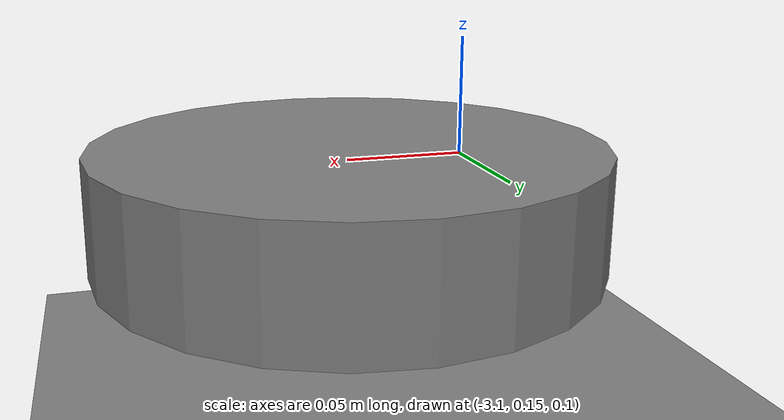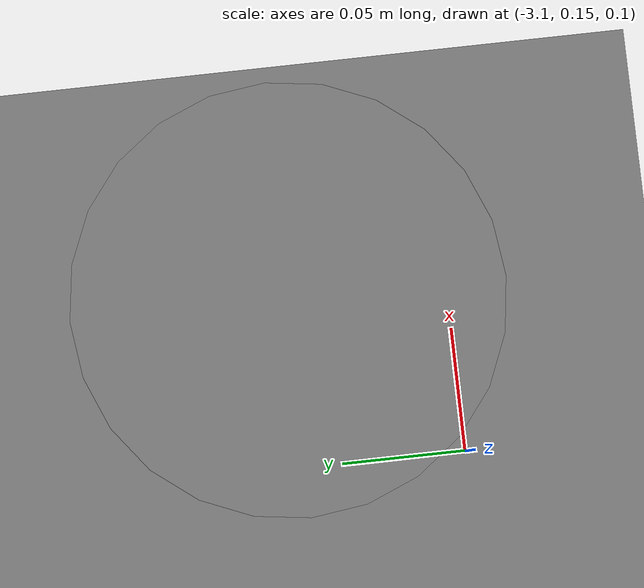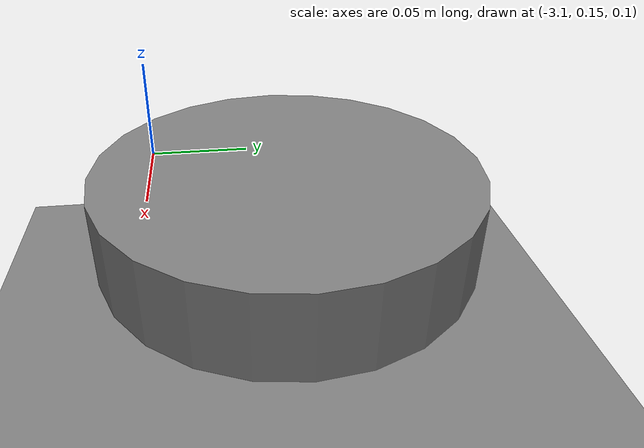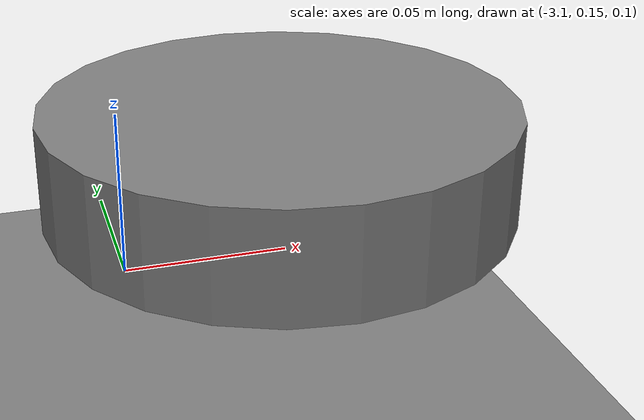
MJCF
<mujoco model="d1_cylinder_box_kernel">
  <compiler angle="radian"/>
  <option ccd_iterations="35" ccd_tolerance="1e-6"/>
  <worldbody>
    <geom name="archived_wheel_59" type="cylinder" size="0.087 0.02" pos="-3.0325551482039352 0.21480723791784517 0.10295825345870419" margin="0.001"/>
    <geom name="archived_box_1" type="box" size="0.18 0.62 0.0075" pos="-3.0999999999999996 0.0 0.0075" margin="0"/>
  </worldbody>
</mujoco>
